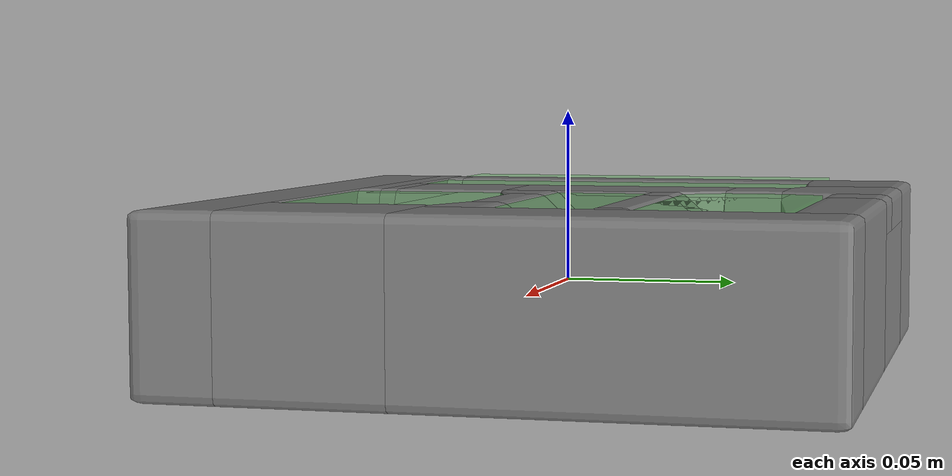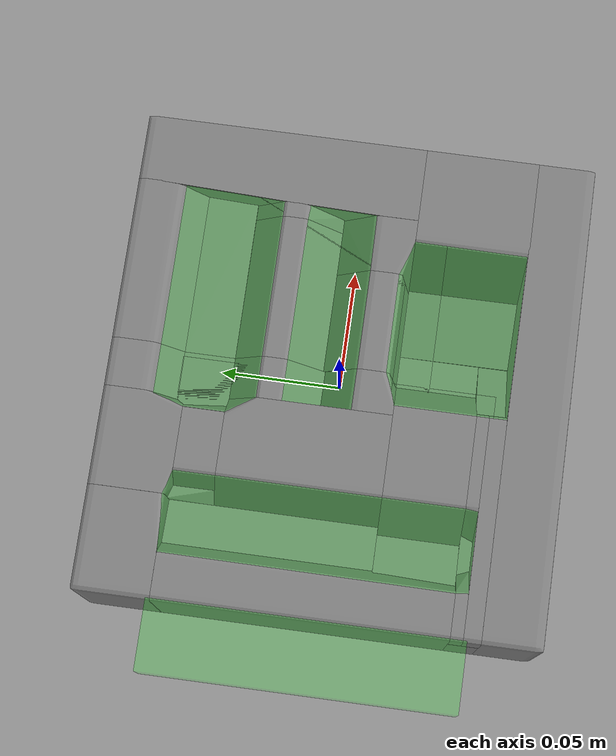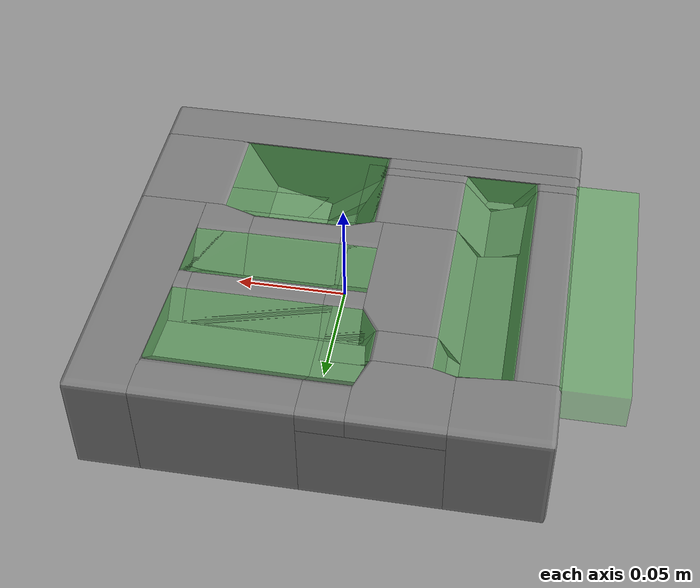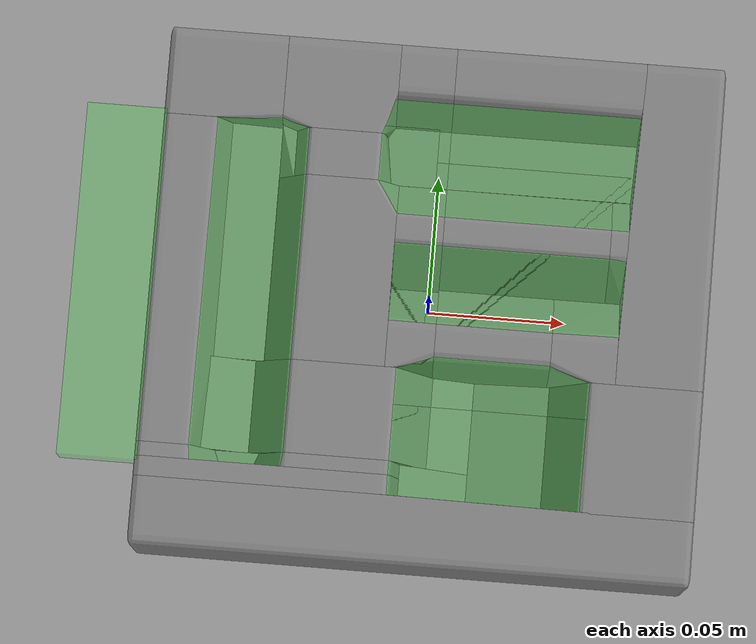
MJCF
<mujoco model="cosmetics_inlay_c">
  <default>
    <default class="visual">
      <geom group="1" type="mesh" contype="0" conaffinity="0" />
    </default>
    <default class="collision">
      <geom group="0" type="mesh" />
    </default>
  </default>
  <asset>
    <mesh file="cosmetics_inlay_c.obj" name="cosmetics_inlay_c" />
    <mesh file="cosmetics_inlay_c_collision_0.obj" name="cosmetics_inlay_c_collision_0" />
    <mesh file="cosmetics_inlay_c_collision_1.obj" name="cosmetics_inlay_c_collision_1" />
    <mesh file="cosmetics_inlay_c_collision_2.obj" name="cosmetics_inlay_c_collision_2" />
    <mesh file="cosmetics_inlay_c_collision_3.obj" name="cosmetics_inlay_c_collision_3" />
    <mesh file="cosmetics_inlay_c_collision_4.obj" name="cosmetics_inlay_c_collision_4" />
    <mesh file="cosmetics_inlay_c_collision_5.obj" name="cosmetics_inlay_c_collision_5" />
    <mesh file="cosmetics_inlay_c_collision_6.obj" name="cosmetics_inlay_c_collision_6" />
    <mesh file="cosmetics_inlay_c_collision_7.obj" name="cosmetics_inlay_c_collision_7" />
    <mesh file="cosmetics_inlay_c_collision_8.obj" name="cosmetics_inlay_c_collision_8" />
    <mesh file="cosmetics_inlay_c_collision_9.obj" name="cosmetics_inlay_c_collision_9" />
    <mesh file="cosmetics_inlay_c_collision_10.obj" name="cosmetics_inlay_c_collision_10" />
    <mesh file="cosmetics_inlay_c_collision_11.obj" name="cosmetics_inlay_c_collision_11" />
    <mesh file="cosmetics_inlay_c_collision_12.obj" name="cosmetics_inlay_c_collision_12" />
    <mesh file="cosmetics_inlay_c_collision_13.obj" name="cosmetics_inlay_c_collision_13" />
    <mesh file="cosmetics_inlay_c_collision_14.obj" name="cosmetics_inlay_c_collision_14" />
    <mesh file="cosmetics_inlay_c_collision_15.obj" name="cosmetics_inlay_c_collision_15" />
    <mesh file="cosmetics_inlay_c_collision_16.obj" name="cosmetics_inlay_c_collision_16" />
    <mesh file="cosmetics_inlay_c_collision_17.obj" name="cosmetics_inlay_c_collision_17" />
    <mesh file="cosmetics_inlay_c_collision_18.obj" name="cosmetics_inlay_c_collision_18" />
    <mesh file="cosmetics_inlay_c_collision_19.obj" name="cosmetics_inlay_c_collision_19" />
    <mesh file="cosmetics_inlay_c_collision_20.obj" name="cosmetics_inlay_c_collision_20" />
    <mesh file="cosmetics_inlay_c_collision_21.obj" name="cosmetics_inlay_c_collision_21" />
    <mesh file="cosmetics_inlay_c_collision_22.obj" name="cosmetics_inlay_c_collision_22" />
    <mesh file="cosmetics_inlay_c_collision_23.obj" name="cosmetics_inlay_c_collision_23" />
    <mesh file="cosmetics_inlay_c_collision_24.obj" name="cosmetics_inlay_c_collision_24" />
    <mesh file="cosmetics_inlay_c_collision_25.obj" name="cosmetics_inlay_c_collision_25" />
    <mesh file="cosmetics_inlay_c_collision_26.obj" name="cosmetics_inlay_c_collision_26" />
  </asset>
  <worldbody>
    <body>
      <body name="object" pos="0 0 0" quat="1 0 0 0">
        <body name="cosmetics_inlay_c" pos="0 0 0" quat="1 0 0 0">
          <inertial pos="0 0 0" mass="0.5" diaginertia="1e-3 1e-3 1e-3" />
          <geom type="mesh" mesh="cosmetics_inlay_c" group="1" quat="1 0 0 0" rgba="0.8 0.8 0.8 1" contype="0" conaffinity="0" />
          <geom type="mesh" mesh="cosmetics_inlay_c_collision_0" group="0" quat="1 0 0 0" />
          <geom type="mesh" mesh="cosmetics_inlay_c_collision_1" group="0" quat="1 0 0 0" />
          <geom type="mesh" mesh="cosmetics_inlay_c_collision_2" group="0" quat="1 0 0 0" />
          <geom type="mesh" mesh="cosmetics_inlay_c_collision_3" group="0" quat="1 0 0 0" />
          <geom type="mesh" mesh="cosmetics_inlay_c_collision_4" group="0" quat="1 0 0 0" />
          <geom type="mesh" mesh="cosmetics_inlay_c_collision_5" group="0" quat="1 0 0 0" />
          <geom type="mesh" mesh="cosmetics_inlay_c_collision_6" group="0" quat="1 0 0 0" />
          <geom type="mesh" mesh="cosmetics_inlay_c_collision_7" group="0" quat="1 0 0 0" />
          <geom type="mesh" mesh="cosmetics_inlay_c_collision_8" group="0" quat="1 0 0 0" />
          <geom type="mesh" mesh="cosmetics_inlay_c_collision_9" group="0" quat="1 0 0 0" />
          <geom type="mesh" mesh="cosmetics_inlay_c_collision_10" group="0" quat="1 0 0 0" />
          <geom type="mesh" mesh="cosmetics_inlay_c_collision_11" group="0" quat="1 0 0 0" />
          <geom type="mesh" mesh="cosmetics_inlay_c_collision_12" group="0" quat="1 0 0 0" />
          <geom type="mesh" mesh="cosmetics_inlay_c_collision_13" group="0" quat="1 0 0 0" />
          <geom type="mesh" mesh="cosmetics_inlay_c_collision_14" group="0" quat="1 0 0 0" />
          <geom type="mesh" mesh="cosmetics_inlay_c_collision_15" group="0" quat="1 0 0 0" />
          <geom type="mesh" mesh="cosmetics_inlay_c_collision_16" group="0" quat="1 0 0 0" />
          <geom type="mesh" mesh="cosmetics_inlay_c_collision_17" group="0" quat="1 0 0 0" />
          <geom type="mesh" mesh="cosmetics_inlay_c_collision_18" group="0" quat="1 0 0 0" />
          <geom type="mesh" mesh="cosmetics_inlay_c_collision_19" group="0" quat="1 0 0 0" />
          <geom type="mesh" mesh="cosmetics_inlay_c_collision_20" group="0" quat="1 0 0 0" />
          <geom type="mesh" mesh="cosmetics_inlay_c_collision_21" group="0" quat="1 0 0 0" />
          <geom type="mesh" mesh="cosmetics_inlay_c_collision_22" group="0" quat="1 0 0 0" />
          <geom type="mesh" mesh="cosmetics_inlay_c_collision_23" group="0" quat="1 0 0 0" />
          <geom type="mesh" mesh="cosmetics_inlay_c_collision_24" group="0" quat="1 0 0 0" />
          <geom type="mesh" mesh="cosmetics_inlay_c_collision_25" group="0" quat="1 0 0 0" />
          <geom type="mesh" mesh="cosmetics_inlay_c_collision_26" group="0" quat="1 0 0 0" />
          <site name="goal_point_cream_bottle" type="sphere" size="0.003" pos="0.026151 0.026151 0.012190" quat="1 0 0 0" rgba="1 0 0 0.8" group="0" />
          <site name="goal_area_cream_bottle" type="box" size="0.047775 0.047775 0.006405" pos="0.026151 0.026151 0.018595" quat="1 0 0 0" rgba="0 1 0 0.2" group="0" />
          <site name="goal_point_jar" type="sphere" size="0.003" pos="0.025076 -0.045993 -0.010070" quat="1 0 0 0" rgba="1 0 0 0.8" group="0" />
          <site name="goal_area_cream_jar" type="box" size="0.035070 0.035070 0.017535" pos="0.025076 -0.045993 0.007465" quat="1 0 0 0" rgba="0 1 0 0.2" group="0" />
          <site name="goal_point_pump_bottle" type="sphere" size="0.003" pos="-0.065 0 0.007833" quat="1 0 0 0" rgba="1 0 0 0.8" group="0" />
          <site name="goal_area_pump_bottle" type="box" size="0.064050 0.064050 0.008584" pos="-0.065 0 0.016416" quat="1 0 0 0" rgba="0 1 0 0.2" group="0" />
          <site name="goal_point_serum_bottle" type="sphere" size="0.003" pos="0.027063 0.007534 0.010668" quat="1 0 0 0" rgba="1 0 0 0.8" group="0" />
          <site name="goal_area_serum_bottle" type="box" size="0.044415 0.044415 0.007166" pos="0.027063 0.007534 0.017834" quat="1 0 0 0" rgba="0 1 0 0.2" group="0" />
        </body>
      </body>
      <site name="bottom_site" pos="0 0 -0.0245" size="0.01" rgba="0 0 0 0" quat="1 0 0 0" />
      <site name="top_site" pos="0 0 0.0245" size="0.01" rgba="0 0 0 0" quat="1 0 0 0" />
      <site name="horizontal_radius_site" pos="0.1 0.0935 0" size="0.01" rgba="0 0 0 0" quat="1 0 0 0" />
    </body>
  </worldbody>
</mujoco>
